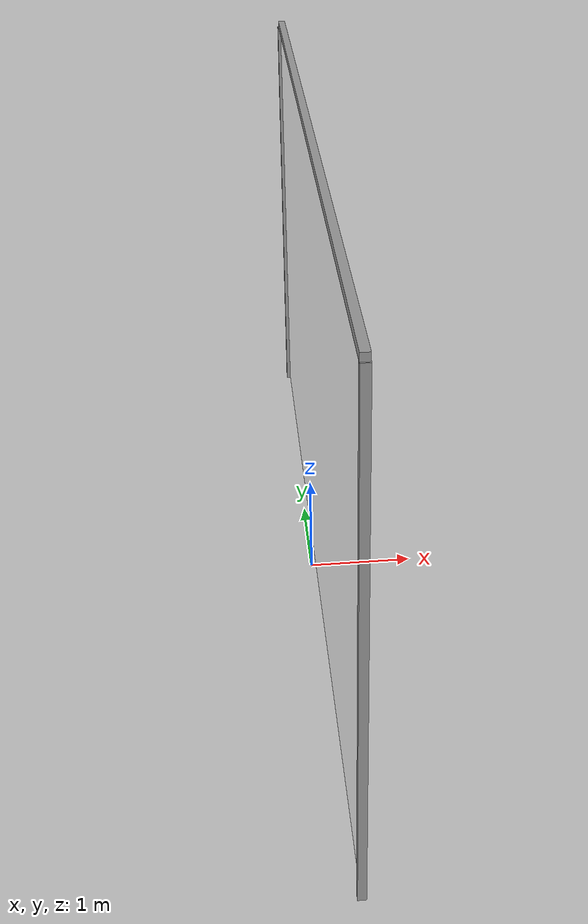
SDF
<?xml version='1.0'?>
<sdf version='1.6'>
  <model name='alambrado'>
    <link name='link'>
      <self_collide>0</self_collide>
      <enable_wind>0</enable_wind>
      <kinematic>0</kinematic>
      <pose frame=''>0.039665 0 2.25811 0 1.56836 0</pose>
      <gravity>1</gravity>
      <inertial>
        <mass>1</mass>
        <pose frame=''>0 0 0 0 -0 0</pose>
        <inertia>
          <ixx>1</ixx>
          <ixy>0</ixy>
          <ixz>0</ixz>
          <iyy>1</iyy>
          <iyz>0</iyz>
          <izz>1</izz>
        </inertia>
      </inertial>
      <visual name='visual'>
        <cast_shadows>0</cast_shadows>
        <geometry>
          <box>
            <size>4.5 8 0.01</size>
          </box>
        </geometry>
        <material>
          <script>
            <uri>model://alambrado/materials/scripts</uri>
            <uri>model://alambrado/materials/textures</uri>
            <name>DRP/alambrado</name>
          </script>
          <shader type='pixel'>
            <normal_map>__default__</normal_map>
          </shader>
          <ambient>1 1 1 1</ambient>
          <diffuse>1 1 1 1</diffuse>
          <specular>0 0 0 1</specular>
          <emissive>0 0 0 1</emissive>
        </material>
        <pose frame=''>0 0 0 0 -0 0</pose>
        <transparency>0</transparency>
      </visual>
      <collision name='collision'>
        <laser_retro>0</laser_retro>
        <max_contacts>10</max_contacts>
        <pose frame=''>0 0 0 0 -0 0</pose>
        <geometry>
          <box>
            <size>4.5 8 0.01</size>
          </box>
        </geometry>
        <surface>
          <friction>
            <ode>
              <mu>1</mu>
              <mu2>1</mu2>
              <fdir1>0 0 0</fdir1>
              <slip1>0</slip1>
              <slip2>0</slip2>
            </ode>
            <torsional>
              <coefficient>1</coefficient>
              <patch_radius>0</patch_radius>
              <surface_radius>0</surface_radius>
              <use_patch_radius>1</use_patch_radius>
              <ode>
                <slip>0</slip>
              </ode>
            </torsional>
          </friction>
          <bounce>
            <restitution_coefficient>0</restitution_coefficient>
            <threshold>1e+06</threshold>
          </bounce>
          <contact>
            <collide_without_contact>0</collide_without_contact>
            <collide_without_contact_bitmask>1</collide_without_contact_bitmask>
            <collide_bitmask>1</collide_bitmask>
            <ode>
              <soft_cfm>0</soft_cfm>
              <soft_erp>0.2</soft_erp>
              <kp>1e+13</kp>
              <kd>1</kd>
              <max_vel>0.01</max_vel>
              <min_depth>0</min_depth>
            </ode>
            <bullet>
              <split_impulse>1</split_impulse>
              <split_impulse_penetration_threshold>-0.01</split_impulse_penetration_threshold>
              <soft_cfm>0</soft_cfm>
              <soft_erp>0.2</soft_erp>
              <kp>1e+13</kp>
              <kd>1</kd>
            </bullet>
          </contact>
        </surface>
      </collision>
    </link>
    <link name='link_0'>
      <inertial>
        <mass>0.0195483</mass>
        <inertia>
          <ixx>0.0401345</ixx>
          <ixy>0</ixy>
          <ixz>0</ixz>
          <iyy>0.0401311</iyy>
          <iyz>0</iyz>
          <izz>1.328e-05</izz>
        </inertia>
        <pose frame=''>0 0 0 0 -0 0</pose>
      </inertial>
      <pose frame=''>0.046494 -4.03775 2.25137 0 -0 0</pose>
      <gravity>1</gravity>
      <self_collide>0</self_collide>
      <kinematic>0</kinematic>
      <enable_wind>0</enable_wind>
      <visual name='visual'>
        <pose frame=''>0 0 0 0 -0 0</pose>
        <geometry>
          <box>
            <size>0.07 0.07 4.5</size>
          </box>
        </geometry>
        <material>
          <lighting>1</lighting>
          <script>
            <uri>file://media/materials/scripts/gazebo.material</uri>
            <name>Gazebo/Grey</name>
          </script>
          <shader type='pixel'>
            <normal_map>__default__</normal_map>
          </shader>
          <ambient>0.3 0.3 0.3 1</ambient>
          <diffuse>0.7 0.7 0.7 1</diffuse>
          <specular>0.01 0.01 0.01 1</specular>
          <emissive>0 0 0 1</emissive>
        </material>
        <transparency>0</transparency>
        <cast_shadows>1</cast_shadows>
      </visual>
      <collision name='collision'>
        <laser_retro>0</laser_retro>
        <max_contacts>10</max_contacts>
        <pose frame=''>0 0 0 0 -0 0</pose>
        <geometry>
          <box>
            <size>0.054939 0.071655 4.5</size>
          </box>
        </geometry>
        <surface>
          <friction>
            <ode>
              <mu>1</mu>
              <mu2>1</mu2>
              <fdir1>0 0 0</fdir1>
              <slip1>0</slip1>
              <slip2>0</slip2>
            </ode>
            <torsional>
              <coefficient>1</coefficient>
              <patch_radius>0</patch_radius>
              <surface_radius>0</surface_radius>
              <use_patch_radius>1</use_patch_radius>
              <ode>
                <slip>0</slip>
              </ode>
            </torsional>
          </friction>
          <bounce>
            <restitution_coefficient>0</restitution_coefficient>
            <threshold>1e+06</threshold>
          </bounce>
          <contact>
            <collide_without_contact>0</collide_without_contact>
            <collide_without_contact_bitmask>1</collide_without_contact_bitmask>
            <collide_bitmask>1</collide_bitmask>
            <ode>
              <soft_cfm>0</soft_cfm>
              <soft_erp>0.2</soft_erp>
              <kp>1e+13</kp>
              <kd>1</kd>
              <max_vel>0.01</max_vel>
              <min_depth>0</min_depth>
            </ode>
            <bullet>
              <split_impulse>1</split_impulse>
              <split_impulse_penetration_threshold>-0.01</split_impulse_penetration_threshold>
              <soft_cfm>0</soft_cfm>
              <soft_erp>0.2</soft_erp>
              <kp>1e+13</kp>
              <kd>1</kd>
            </bullet>
          </contact>
        </surface>
      </collision>
    </link>
    <link name='link_0_clone'>
      <inertial>
        <mass>0.0195483</mass>
        <inertia>
          <ixx>0.0401345</ixx>
          <ixy>0</ixy>
          <ixz>0</ixz>
          <iyy>0.0401311</iyy>
          <iyz>0</iyz>
          <izz>1.328e-05</izz>
        </inertia>
        <pose frame=''>0 0 0 0 -0 0</pose>
      </inertial>
      <pose frame=''>0.034694 4.03362 2.25137 0 -0 0</pose>
      <gravity>1</gravity>
      <self_collide>0</self_collide>
      <kinematic>0</kinematic>
      <enable_wind>0</enable_wind>
      <visual name='visual'>
        <pose frame=''>0 0 0 0 -0 0</pose>
        <geometry>
          <box>
            <size>0.07 0.07 4.5</size>
          </box>
        </geometry>
        <material>
          <lighting>1</lighting>
          <script>
            <uri>file://media/materials/scripts/gazebo.material</uri>
            <name>Gazebo/Grey</name>
          </script>
          <shader type='pixel'>
            <normal_map>__default__</normal_map>
          </shader>
          <ambient>0.3 0.3 0.3 1</ambient>
          <diffuse>0.7 0.7 0.7 1</diffuse>
          <specular>0.01 0.01 0.01 1</specular>
          <emissive>0 0 0 1</emissive>
        </material>
        <transparency>0</transparency>
        <cast_shadows>1</cast_shadows>
      </visual>
      <collision name='collision'>
        <laser_retro>0</laser_retro>
        <max_contacts>10</max_contacts>
        <pose frame=''>0 0 0 0 -0 0</pose>
        <geometry>
          <box>
            <size>0.07 0.07 4.5</size>
          </box>
        </geometry>
        <surface>
          <friction>
            <ode>
              <mu>1</mu>
              <mu2>1</mu2>
              <fdir1>0 0 0</fdir1>
              <slip1>0</slip1>
              <slip2>0</slip2>
            </ode>
            <torsional>
              <coefficient>1</coefficient>
              <patch_radius>0</patch_radius>
              <surface_radius>0</surface_radius>
              <use_patch_radius>1</use_patch_radius>
              <ode>
                <slip>0</slip>
              </ode>
            </torsional>
          </friction>
          <bounce>
            <restitution_coefficient>0</restitution_coefficient>
            <threshold>1e+06</threshold>
          </bounce>
          <contact>
            <collide_without_contact>0</collide_without_contact>
            <collide_without_contact_bitmask>1</collide_without_contact_bitmask>
            <collide_bitmask>1</collide_bitmask>
            <ode>
              <soft_cfm>0</soft_cfm>
              <soft_erp>0.2</soft_erp>
              <kp>1e+13</kp>
              <kd>1</kd>
              <max_vel>0.01</max_vel>
              <min_depth>0</min_depth>
            </ode>
            <bullet>
              <split_impulse>1</split_impulse>
              <split_impulse_penetration_threshold>-0.01</split_impulse_penetration_threshold>
              <soft_cfm>0</soft_cfm>
              <soft_erp>0.2</soft_erp>
              <kp>1e+13</kp>
              <kd>1</kd>
            </bullet>
          </contact>
        </surface>
      </collision>
    </link>
    <link name='link_1'>
      <inertial>
        <mass>0.00177871</mass>
        <inertia>
          <ixx>0.0097733</ixx>
          <ixy>0</ixy>
          <ixz>0</ixz>
          <iyy>5.2e-07</iyy>
          <iyz>0</iyz>
          <izz>0.00977336</izz>
        </inertia>
        <pose frame=''>0 0 0 0 -0 0</pose>
      </inertial>
      <pose frame=''>0.044637 -0.000651 4.52978 0 -0 0</pose>
      <gravity>1</gravity>
      <self_collide>0</self_collide>
      <kinematic>0</kinematic>
      <enable_wind>0</enable_wind>
      <visual name='visual'>
        <pose frame=''>0 0 0 0 -0 0</pose>
        <geometry>
          <box>
            <size>0.07 8.11996 0.07</size>
          </box>
        </geometry>
        <material>
          <lighting>1</lighting>
          <script>
            <uri>file://media/materials/scripts/gazebo.material</uri>
            <name>Gazebo/Grey</name>
          </script>
          <shader type='pixel'>
            <normal_map>__default__</normal_map>
          </shader>
          <ambient>0.3 0.3 0.3 1</ambient>
          <diffuse>0.7 0.7 0.7 1</diffuse>
          <specular>0.01 0.01 0.01 1</specular>
          <emissive>0 0 0 1</emissive>
        </material>
        <transparency>0</transparency>
        <cast_shadows>1</cast_shadows>
      </visual>
      <collision name='collision'>
        <laser_retro>0</laser_retro>
        <max_contacts>10</max_contacts>
        <pose frame=''>0 0 0 0 -0 0</pose>
        <geometry>
          <box>
            <size>0.07 8.11996 0.07</size>
          </box>
        </geometry>
        <surface>
          <friction>
            <ode>
              <mu>1</mu>
              <mu2>1</mu2>
              <fdir1>0 0 0</fdir1>
              <slip1>0</slip1>
              <slip2>0</slip2>
            </ode>
            <torsional>
              <coefficient>1</coefficient>
              <patch_radius>0</patch_radius>
              <surface_radius>0</surface_radius>
              <use_patch_radius>1</use_patch_radius>
              <ode>
                <slip>0</slip>
              </ode>
            </torsional>
          </friction>
          <bounce>
            <restitution_coefficient>0</restitution_coefficient>
            <threshold>1e+06</threshold>
          </bounce>
          <contact>
            <collide_without_contact>0</collide_without_contact>
            <collide_without_contact_bitmask>1</collide_without_contact_bitmask>
            <collide_bitmask>1</collide_bitmask>
            <ode>
              <soft_cfm>0</soft_cfm>
              <soft_erp>0.2</soft_erp>
              <kp>1e+13</kp>
              <kd>1</kd>
              <max_vel>0.01</max_vel>
              <min_depth>0</min_depth>
            </ode>
            <bullet>
              <split_impulse>1</split_impulse>
              <split_impulse_penetration_threshold>-0.01</split_impulse_penetration_threshold>
              <soft_cfm>0</soft_cfm>
              <soft_erp>0.2</soft_erp>
              <kp>1e+13</kp>
              <kd>1</kd>
            </bullet>
          </contact>
        </surface>
      </collision>
    </link>
    <static>1</static>
    <allow_auto_disable>1</allow_auto_disable>
  </model>
</sdf>
